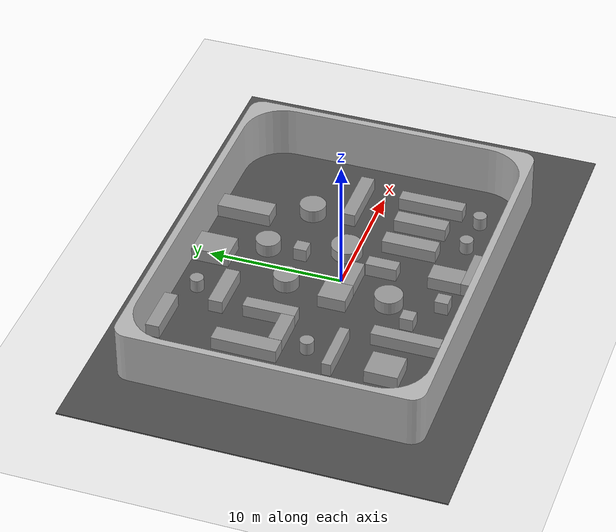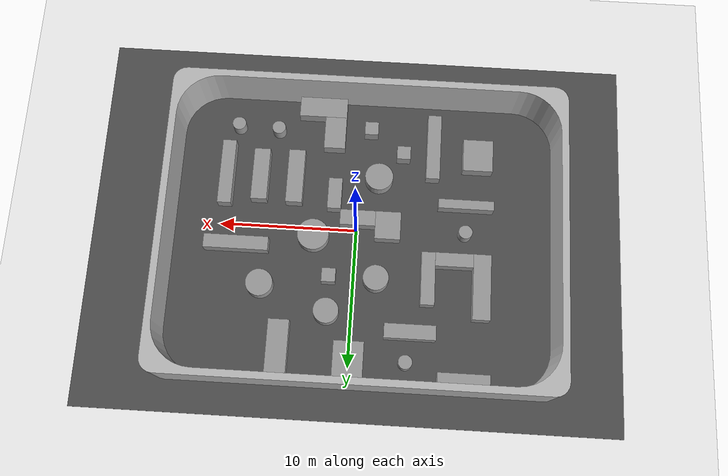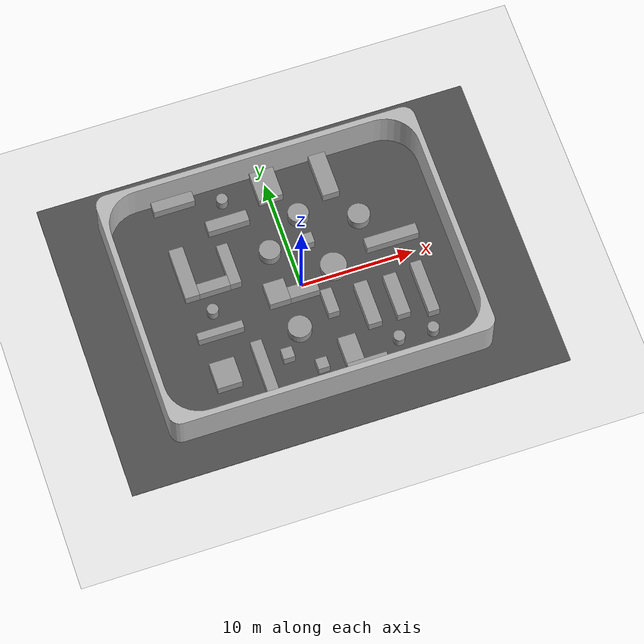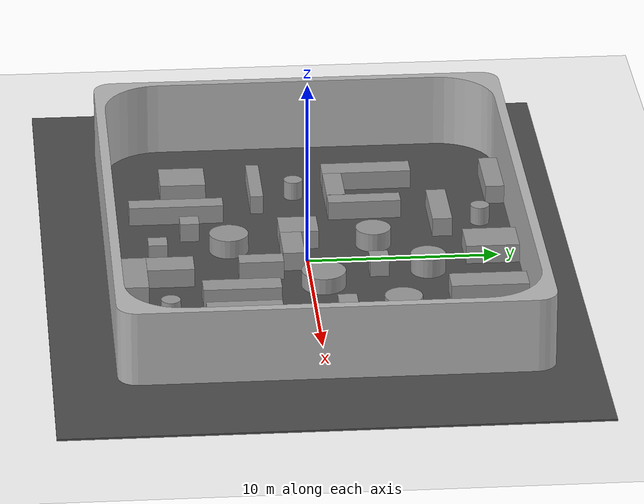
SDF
<sdf version="1.6">
 <world name="default">
  <light name="sun" type="directional">
   <pose>0 0 100 0 -0 0</pose>
   <diffuse>0.8 0.8 0.8 1</diffuse>
   <specular>0.1 0.1 0.1 1</specular>
   <attenuation>
    <range>1000</range>
    <constant>0.9</constant>
    <linear>0.01</linear>
    <quadratic>0.001</quadratic>
   </attenuation>
   <direction>-0.5 0.5 -1</direction>
  </light>
  <model name="ground_plane">
   <static>1</static>
   <link name="link">
    <collision name="collision">
     <geometry><plane><normal>0 0 1</normal><size>100 100</size></plane></geometry>
     <surface><friction><ode><mu>100</mu><mu2>50</mu2></ode></friction></surface>
    </collision>
    <visual name="visual">
     <cast_shadows>0</cast_shadows>
     <geometry><plane><normal>0 0 1</normal><size>100 100</size></plane></geometry>
     <material>
      <script><uri>file://media/materials/scripts/gazebo.material</uri><name>Gazebo/Grey</name></script>
     </material>
    </visual>
   </link>
  </model>
  <gravity>0 0 -9.8</gravity>
  <magnetic_field>6e-06 2.3e-05 -4.2e-05</magnetic_field>
  <atmosphere type="adiabatic"/>
  <physics name="default_physics" default="0" type="ode">
   <max_step_size>0.001</max_step_size>
   <real_time_factor>1</real_time_factor>
   <real_time_update_rate>1000</real_time_update_rate>
  </physics>
  <scene><ambient>0.4 0.4 0.4 1</ambient><background>0.7 0.7 0.7 1</background><shadows>1</shadows></scene>
  <spherical_coordinates>
   <surface_model>EARTH_WGS84</surface_model>
   <latitude_deg>0</latitude_deg>
   <longitude_deg>0</longitude_deg>
   <elevation>0</elevation>
   <heading_deg>0</heading_deg>
  </spherical_coordinates>
  <model name="asphalt_plane">
   <static>1</static>
   <link name="link">
    <collision name="collision"><geometry><box><size>38.6352 27.5497 0.1</size></box></geometry></collision>
    <visual name="visual">
     <cast_shadows>0</cast_shadows>
     <geometry><box><size>38.6352 27.5497 0.1</size></box></geometry>
     <material>
      <script>
       <uri>model://asphalt_plane/materials/scripts</uri>
       <uri>model://asphalt_plane/materials/textures</uri>
       <name>vrc/asphalt</name>
      </script>
     </material>
    </visual>
   </link>
   <pose>-0.04089 0.004904 0 0 -0 0</pose>
  </model>
  <model name="yard">
   <pose>-0.5 0.5 0 1.5708 -0 1.5708</pose>
   <static>1</static>
   <link name="body">
    <collision name="collision">
     <geometry><mesh><uri>model://yard/yard.stl</uri><scale>0.1 0.1 0.1</scale></mesh></geometry>
    </collision>
    <visual name="visual">
     <geometry><mesh><uri>model://yard/yard.stl</uri><scale>0.1 0.1 0.1</scale></mesh></geometry>
    </visual>
   </link>
  </model>
  <audio><device>default</device></audio>
  <model name="unit_box">
   <pose>1.94484 -7.27317 0.549944 4.6e-05 -0 -0.000235</pose>
   <static>1</static>
   <link name="link">
    <inertial>
     <mass>1</mass>
     <inertia>
      <ixx>0.166667</ixx>
      <ixy>0</ixy>
      <ixz>0</ixz>
      <iyy>0.166667</iyy>
      <iyz>0</iyz>
      <izz>0.166667</izz>
     </inertia>
    </inertial>
    <collision name="collision"><geometry><box><size>1.56644 2.44989 1</size></box></geometry></collision>
    <visual name="visual">
     <geometry><box><size>1.56644 2.44989 1</size></box></geometry>
     <material>
      <script><name>Gazebo/Grey</name><uri>file://media/materials/scripts/gazebo.material</uri></script>
     </material>
    </visual>
   </link>
  </model>
  <model name="unit_box_0">
   <pose>-0.101478 -0.784256 0.549995 -8e-06 -0 4.5e-05</pose>
   <static>1</static>
   <link name="link">
    <inertial>
     <mass>1</mass>
     <inertia>
      <ixx>0.166667</ixx>
      <ixy>0</ixy>
      <ixz>0</ixz>
      <iyy>0.166667</iyy>
      <iyz>0</iyz>
      <izz>0.166667</izz>
     </inertia>
    </inertial>
    <collision name="collision"><geometry><box><size>2.57215 1.13119 1</size></box></geometry></collision>
    <visual name="visual">
     <geometry><box><size>2.57215 1.13119 1</size></box></geometry>
     <material>
      <script><name>Gazebo/Grey</name><uri>file://media/materials/scripts/gazebo.material</uri></script>
     </material>
    </visual>
   </link>
  </model>
  <model name="unit_box_2">
   <pose>-4.24399 7.31351 0.549996 -7e-06 -0 0.001667</pose>
   <static>1</static>
   <link name="link">
    <inertial>
     <mass>1</mass>
     <inertia>
      <ixx>0.166667</ixx>
      <ixy>0</ixy>
      <ixz>0</ixz>
      <iyy>0.166667</iyy>
      <iyz>0</iyz>
      <izz>0.166667</izz>
     </inertia>
    </inertial>
    <collision name="collision"><geometry><box><size>3.6762 1.04493 1</size></box></geometry></collision>
    <visual name="visual">
     <geometry><box><size>3.6762 1.04493 1</size></box></geometry>
     <material>
      <script><name>Gazebo/Grey</name><uri>file://media/materials/scripts/gazebo.material</uri></script>
     </material>
    </visual>
   </link>
  </model>
  <model name="unit_box_3">
   <pose>-7.95065 -2.22885 0.549228 0 0.000383 -0.000473</pose>
   <static>1</static>
   <link name="link">
    <inertial>
     <mass>1</mass>
     <inertia>
      <ixx>0.166667</ixx>
      <ixy>0</ixy>
      <ixz>0</ixz>
      <iyy>0.166667</iyy>
      <iyz>0</iyz>
      <izz>0.166667</izz>
     </inertia>
    </inertial>
    <collision name="collision"><geometry><box><size>4.02808 0.69011 1</size></box></geometry></collision>
    <visual name="visual">
     <geometry><box><size>4.02808 0.69011 1</size></box></geometry>
     <material>
      <script><name>Gazebo/Grey</name><uri>file://media/materials/scripts/gazebo.material</uri></script>
     </material>
    </visual>
   </link>
  </model>
  <model name="unit_box_4">
   <pose>-5.36419 3.41619 0.544487 0 -0 0.009696</pose>
   <static>1</static>
   <link name="link">
    <inertial>
     <mass>1</mass>
     <inertia>
      <ixx>0.166667</ixx>
      <ixy>0</ixy>
      <ixz>0</ixz>
      <iyy>0.166667</iyy>
      <iyz>0</iyz>
      <izz>0.166667</izz>
     </inertia>
    </inertial>
    <collision name="collision"><geometry><box><size>1 3.85958 1</size></box></geometry></collision>
    <visual name="visual">
     <geometry><box><size>1 3.85958 1</size></box></geometry>
     <material>
      <script><name>Gazebo/Grey</name><uri>file://media/materials/scripts/gazebo.material</uri></script>
     </material>
    </visual>
   </link>
  </model>
  <model name="unit_box_5">
   <pose>-2.31387 -0.32271 0.549982 0 1.7e-05 -1.57091</pose>
   <static>1</static>
   <link name="link">
    <inertial>
     <mass>1</mass>
     <inertia>
      <ixx>0.166667</ixx>
      <ixy>0</ixy>
      <ixz>0</ixz>
      <iyy>0.166667</iyy>
      <iyz>0</iyz>
      <izz>0.166667</izz>
     </inertia>
    </inertial>
    <collision name="collision"><geometry><box><size>2.05698 1.8521 1</size></box></geometry></collision>
    <visual name="visual">
     <geometry><box><size>2.05698 1.8521 1</size></box></geometry>
     <material>
      <script><name>Gazebo/Grey</name><uri>file://media/materials/scripts/gazebo.material</uri></script>
     </material>
    </visual>
   </link>
  </model>
  <model name="unit_box_7">
   <pose>-9.21828 3.84095 0.550078 0.003668 -0 0</pose>
   <static>1</static>
   <link name="link">
    <inertial>
     <mass>1</mass>
     <inertia>
      <ixx>0.166667</ixx>
      <ixy>0</ixy>
      <ixz>0</ixz>
      <iyy>0.166667</iyy>
      <iyz>0</iyz>
      <izz>0.166667</izz>
     </inertia>
    </inertial>
    <collision name="collision"><geometry><box><size>1.27143 4.75463 1</size></box></geometry></collision>
    <visual name="visual">
     <geometry><box><size>1.27143 4.75463 1</size></box></geometry>
     <material>
      <script><name>Gazebo/Grey</name><uri>file://media/materials/scripts/gazebo.material</uri></script>
     </material>
    </visual>
   </link>
  </model>
  <model name="unit_cylinder">
   <pose>-1.64131 3.58834 0.549998 -3e-06 -1e-06 0.152909</pose>
   <static>1</static>
   <link name="link">
    <inertial>
     <mass>1</mass>
     <inertia><ixx>0.145833</ixx><ixy>0</ixy><ixz>0</ixz><iyy>0.145833</iyy><iyz>0</iyz><izz>0.125</izz></inertia>
    </inertial>
    <collision name="collision">
     <geometry><cylinder><radius>0.928444</radius><length>1</length></cylinder></geometry>
    </collision>
    <visual name="visual">
     <geometry><cylinder><radius>0.928444</radius><length>1</length></cylinder></geometry>
     <material>
      <script><name>Gazebo/Grey</name><uri>file://media/materials/scripts/gazebo.material</uri></script>
     </material>
    </visual>
   </link>
  </model>
  <model name="unit_cylinder_0">
   <pose>-1.49651 -4.01365 0.549992 2e-06 0 -0.0002</pose>
   <static>1</static>
   <link name="link">
    <inertial>
     <mass>1</mass>
     <inertia><ixx>0.145833</ixx><ixy>0</ixy><ixz>0</ixz><iyy>0.145833</iyy><iyz>0</iyz><izz>0.125</izz></inertia>
    </inertial>
    <collision name="collision">
     <geometry><cylinder><radius>1.02868</radius><length>1</length></cylinder></geometry>
    </collision>
    <visual name="visual">
     <geometry><cylinder><radius>1.02868</radius><length>1</length></cylinder></geometry>
     <material>
      <script><name>Gazebo/Grey</name><uri>file://media/materials/scripts/gazebo.material</uri></script>
     </material>
    </visual>
   </link>
  </model>
  <model name="unit_box_9">
   <pose>-7.21454 1.97147 0.549892 0 -7.9e-05 0.003843</pose>
   <static>1</static>
   <link name="link">
    <inertial>
     <mass>1</mass>
     <inertia>
      <ixx>0.166667</ixx>
      <ixy>0</ixy>
      <ixz>0</ixz>
      <iyy>0.166667</iyy>
      <iyz>0</iyz>
      <izz>0.166667</izz>
     </inertia>
    </inertial>
    <collision name="collision"><geometry><box><size>2.74403 1 1</size></box></geometry></collision>
    <visual name="visual">
     <geometry><box><size>2.74403 1 1</size></box></geometry>
     <material>
      <script><name>Gazebo/Grey</name><uri>file://media/materials/scripts/gazebo.material</uri></script>
     </material>
    </visual>
   </link>
  </model>
  <model name="unit_box_10">
   <pose>-5.43624 -6.57677 0.547912 -0.000838 0 0</pose>
   <static>1</static>
   <link name="link">
    <inertial>
     <mass>1</mass>
     <inertia>
      <ixx>0.166667</ixx>
      <ixy>0</ixy>
      <ixz>0</ixz>
      <iyy>0.166667</iyy>
      <iyz>0</iyz>
      <izz>0.166667</izz>
     </inertia>
    </inertial>
    <collision name="collision"><geometry><box><size>1 4.98238 1</size></box></geometry></collision>
    <visual name="visual">
     <geometry><box><size>1 4.98238 1</size></box></geometry>
     <material>
      <script><name>Gazebo/Grey</name><uri>file://media/materials/scripts/gazebo.material</uri></script>
     </material>
    </visual>
   </link>
  </model>
  <model name="unit_cylinder_1">
   <pose>3.06942 0.609835 -1.34282 1e-06 -1e-06 0.000638</pose>
   <static>1</static>
   <link name="link">
    <inertial>
     <mass>1</mass>
     <inertia><ixx>0.145833</ixx><ixy>0</ixy><ixz>0</ixz><iyy>0.145833</iyy><iyz>0</iyz><izz>0.125</izz></inertia>
    </inertial>
    <collision name="collision">
     <geometry><cylinder><radius>1.15102</radius><length>4.52633</length></cylinder></geometry>
    </collision>
    <visual name="visual">
     <geometry><cylinder><radius>1.15102</radius><length>4.52633</length></cylinder></geometry>
     <material>
      <script><name>Gazebo/Grey</name><uri>file://media/materials/scripts/gazebo.material</uri></script>
     </material>
    </visual>
   </link>
  </model>
  <model name="unit_cylinder_2">
   <pose>1.76132 6.15444 0.550001 -1e-06 1e-06 0.667564</pose>
   <static>1</static>
   <link name="link">
    <inertial>
     <mass>1</mass>
     <inertia><ixx>0.145833</ixx><ixy>0</ixy><ixz>0</ixz><iyy>0.145833</iyy><iyz>0</iyz><izz>0.125</izz></inertia>
    </inertial>
    <collision name="collision">
     <geometry><cylinder><radius>0.91444</radius><length>1</length></cylinder></geometry>
    </collision>
    <visual name="visual">
     <geometry><cylinder><radius>0.91444</radius><length>1</length></cylinder></geometry>
     <material>
      <script><name>Gazebo/Grey</name><uri>file://media/materials/scripts/gazebo.material</uri></script>
     </material>
    </visual>
   </link>
  </model>
  <model name="unit_box_1">
   <pose>2.925 -9.25818 0.549996 6e-06 -0 0.000254</pose>
   <static>1</static>
   <link name="link">
    <inertial>
     <mass>1</mass>
     <inertia>
      <ixx>0.166667</ixx>
      <ixy>0</ixy>
      <ixz>0</ixz>
      <iyy>0.166667</iyy>
      <iyz>0</iyz>
      <izz>0.166667</izz>
     </inertia>
    </inertial>
    <collision name="collision"><geometry><box><size>3.52782 1.51824 1</size></box></geometry></collision>
    <visual name="visual">
     <geometry><box><size>3.52782 1.51824 1</size></box></geometry>
     <material>
      <script><name>Gazebo/Grey</name><uri>file://media/materials/scripts/gazebo.material</uri></script>
     </material>
    </visual>
   </link>
  </model>
  <model name="unit_box_6">
   <pose>5.01396 8.97832 0.549236 -0.00038 0 7.5e-05</pose>
   <static>1</static>
   <link name="link">
    <inertial>
     <mass>1</mass>
     <inertia>
      <ixx>0.166667</ixx>
      <ixy>0</ixy>
      <ixz>0</ixz>
      <iyy>0.166667</iyy>
      <iyz>0</iyz>
      <izz>0.166667</izz>
     </inertia>
    </inertial>
    <collision name="collision"><geometry><box><size>1.49837 4.01946 1</size></box></geometry></collision>
    <visual name="visual">
     <geometry><box><size>1.49837 4.01946 1</size></box></geometry>
     <material>
      <script><name>Gazebo/Grey</name><uri>file://media/materials/scripts/gazebo.material</uri></script>
     </material>
    </visual>
   </link>
  </model>
  <model name="unit_box_8">
   <pose>4.65698 -3.72347 0.549212 0.00039 -0 0</pose>
   <static>1</static>
   <link name="link">
    <inertial>
     <mass>1</mass>
     <inertia>
      <ixx>0.166667</ixx>
      <ixy>0</ixy>
      <ixz>0</ixz>
      <iyy>0.166667</iyy>
      <iyz>0</iyz>
      <izz>0.166667</izz>
     </inertia>
    </inertial>
    <collision name="collision"><geometry><box><size>1.20721 4.04477 1</size></box></geometry></collision>
    <visual name="visual">
     <geometry><box><size>1.20721 4.04477 1</size></box></geometry>
     <material>
      <script><name>Gazebo/Grey</name><uri>file://media/materials/scripts/gazebo.material</uri></script>
     </material>
    </visual>
   </link>
  </model>
  <model name="unit_box_11">
   <pose>7.23617 -3.74513 0.549337 0.00034 -0 0</pose>
   <static>1</static>
   <link name="link">
    <inertial>
     <mass>1</mass>
     <inertia>
      <ixx>0.166667</ixx>
      <ixy>0</ixy>
      <ixz>0</ixz>
      <iyy>0.166667</iyy>
      <iyz>0</iyz>
      <izz>0.166667</izz>
     </inertia>
    </inertial>
    <collision name="collision"><geometry><box><size>1.17874 3.90203 1</size></box></geometry></collision>
    <visual name="visual">
     <geometry><box><size>1.17874 3.90203 1</size></box></geometry>
     <material>
      <script><name>Gazebo/Grey</name><uri>file://media/materials/scripts/gazebo.material</uri></script>
     </material>
    </visual>
   </link>
  </model>
  <model name="unit_box_12">
   <pose>9.73406 -3.80097 0.54814 -0.000766 0 0</pose>
   <static>1</static>
   <link name="link">
    <inertial>
     <mass>1</mass>
     <inertia>
      <ixx>0.166667</ixx>
      <ixy>0</ixy>
      <ixz>0</ixz>
      <iyy>0.166667</iyy>
      <iyz>0</iyz>
      <izz>0.166667</izz>
     </inertia>
    </inertial>
    <collision name="collision"><geometry><box><size>1 4.85814 1</size></box></geometry></collision>
    <visual name="visual">
     <geometry><box><size>1 4.85814 1</size></box></geometry>
     <material>
      <script><name>Gazebo/Grey</name><uri>file://media/materials/scripts/gazebo.material</uri></script>
     </material>
    </visual>
   </link>
  </model>
  <model name="unit_box_13">
   <pose>8.58288 1.54858 0.549997 6e-06 -0 0.000172</pose>
   <static>1</static>
   <link name="link">
    <inertial>
     <mass>1</mass>
     <inertia>
      <ixx>0.166667</ixx>
      <ixy>0</ixy>
      <ixz>0</ixz>
      <iyy>0.166667</iyy>
      <iyz>0</iyz>
      <izz>0.166667</izz>
     </inertia>
    </inertial>
    <collision name="collision"><geometry><box><size>4.68093 1 1</size></box></geometry></collision>
    <visual name="visual">
     <geometry><box><size>4.68093 1 1</size></box></geometry>
     <material>
      <script><name>Gazebo/Grey</name><uri>file://media/materials/scripts/gazebo.material</uri></script>
     </material>
    </visual>
   </link>
  </model>
  <model name="unit_cylinder_3">
   <pose>6.6475 4.41663 0.55 0 0 -0.000136</pose>
   <static>1</static>
   <link name="link">
    <inertial>
     <mass>1</mass>
     <inertia><ixx>0.145833</ixx><ixy>0</ixy><ixz>0</ixz><iyy>0.145833</iyy><iyz>0</iyz><izz>0.125</izz></inertia>
    </inertial>
    <collision name="collision">
     <geometry><cylinder><radius>0.977315</radius><length>1</length></cylinder></geometry>
    </collision>
    <visual name="visual">
     <geometry><cylinder><radius>0.977315</radius><length>1</length></cylinder></geometry>
     <material>
      <script><name>Gazebo/Grey</name><uri>file://media/materials/scripts/gazebo.material</uri></script>
     </material>
    </visual>
   </link>
  </model>
  <model name="unit_cylinder_4">
   <pose>-7.95129 -0.149554 0.550002 4e-06 1e-06 0.00014</pose>
   <static>1</static>
   <link name="link">
    <inertial>
     <mass>1</mass>
     <inertia><ixx>0.145833</ixx><ixy>0</ixy><ixz>0</ixz><iyy>0.145833</iyy><iyz>0</iyz><izz>0.125</izz></inertia>
    </inertial>
    <collision name="collision">
     <geometry><cylinder><radius>0.5</radius><length>1</length></cylinder></geometry>
    </collision>
    <visual name="visual">
     <geometry><cylinder><radius>0.5</radius><length>1</length></cylinder></geometry>
     <material>
      <script><name>Gazebo/Grey</name><uri>file://media/materials/scripts/gazebo.material</uri></script>
     </material>
    </visual>
   </link>
  </model>
  <model name="unit_box_2_clone">
   <pose>-8.09581 10.5412 0.549995 -7e-06 -0 0.001667</pose>
   <static>1</static>
   <link name="link">
    <inertial>
     <mass>1</mass>
     <inertia>
      <ixx>0.166667</ixx>
      <ixy>0</ixy>
      <ixz>0</ixz>
      <iyy>0.166667</iyy>
      <iyz>0</iyz>
      <izz>0.166667</izz>
     </inertia>
    </inertial>
    <collision name="collision"><geometry><box><size>3.6762 1.04493 1</size></box></geometry></collision>
    <visual name="visual">
     <geometry><box><size>3.6762 1.04493 1</size></box></geometry>
     <material>
      <script><name>Gazebo/Grey</name><uri>file://media/materials/scripts/gazebo.material</uri></script>
     </material>
    </visual>
   </link>
  </model>
  <model name="unit_box_14">
   <pose>-3.23125 -5.98629 0.55 -0 -0 -0</pose>
   <static>1</static>
   <link name="link">
    <inertial>
     <mass>1</mass>
     <inertia>
      <ixx>0.166667</ixx>
      <ixy>0</ixy>
      <ixz>0</ixz>
      <iyy>0.166667</iyy>
      <iyz>0</iyz>
      <izz>0.166667</izz>
     </inertia>
    </inertial>
    <collision name="collision"><geometry><box><size>1 1 1</size></box></geometry></collision>
    <visual name="visual">
     <geometry><box><size>1 1 1</size></box></geometry>
     <material>
      <script><name>Gazebo/Grey</name><uri>file://media/materials/scripts/gazebo.material</uri></script>
     </material>
    </visual>
   </link>
  </model>
  <model name="unit_box_15">
   <pose>-0.754558 -7.78163 0.55 -0 -0 -0</pose>
   <static>1</static>
   <link name="link">
    <inertial>
     <mass>1</mass>
     <inertia>
      <ixx>0.166667</ixx>
      <ixy>0</ixy>
      <ixz>0</ixz>
      <iyy>0.166667</iyy>
      <iyz>0</iyz>
      <izz>0.166667</izz>
     </inertia>
    </inertial>
    <collision name="collision"><geometry><box><size>1 1 1</size></box></geometry></collision>
    <visual name="visual">
     <geometry><box><size>1 1 1</size></box></geometry>
     <material>
      <script><name>Gazebo/Grey</name><uri>file://media/materials/scripts/gazebo.material</uri></script>
     </material>
    </visual>
   </link>
  </model>
  <model name="unit_box_16">
   <pose>1.67922 -2.54789 0.549961 3.4e-05 -0 0</pose>
   <static>1</static>
   <link name="link">
    <inertial>
     <mass>1</mass>
     <inertia>
      <ixx>0.166667</ixx>
      <ixy>0</ixy>
      <ixz>0</ixz>
      <iyy>0.166667</iyy>
      <iyz>0</iyz>
      <izz>0.166667</izz>
     </inertia>
    </inertial>
    <collision name="collision"><geometry><box><size>1 2.31479 1</size></box></geometry></collision>
    <visual name="visual">
     <geometry><box><size>1 2.31479 1</size></box></geometry>
     <material>
      <script><name>Gazebo/Grey</name><uri>file://media/materials/scripts/gazebo.material</uri></script>
     </material>
    </visual>
   </link>
  </model>
  <model name="unit_cylinder_5">
   <pose>6.17846 -7.45941 0.550001 2e-06 0 -4e-05</pose>
   <static>1</static>
   <link name="link">
    <inertial>
     <mass>1</mass>
     <inertia><ixx>0.145833</ixx><ixy>0</ixy><ixz>0</ixz><iyy>0.145833</iyy><iyz>0</iyz><izz>0.125</izz></inertia>
    </inertial>
    <collision name="collision">
     <geometry><cylinder><radius>0.5</radius><length>1</length></cylinder></geometry>
    </collision>
    <visual name="visual">
     <geometry><cylinder><radius>0.5</radius><length>1</length></cylinder></geometry>
     <material>
      <script><name>Gazebo/Grey</name><uri>file://media/materials/scripts/gazebo.material</uri></script>
     </material>
    </visual>
   </link>
  </model>
  <model name="unit_cylinder_6">
   <pose>9.17026 -7.60641 0.549988 4e-06 2e-06 -0.000215</pose>
   <static>1</static>
   <link name="link">
    <inertial>
     <mass>1</mass>
     <inertia><ixx>0.145833</ixx><ixy>0</ixy><ixz>0</ixz><iyy>0.145833</iyy><iyz>0</iyz><izz>0.125</izz></inertia>
    </inertial>
    <collision name="collision">
     <geometry><cylinder><radius>0.5</radius><length>1</length></cylinder></geometry>
    </collision>
    <visual name="visual">
     <geometry><cylinder><radius>0.5</radius><length>1</length></cylinder></geometry>
     <material>
      <script><name>Gazebo/Grey</name><uri>file://media/materials/scripts/gazebo.material</uri></script>
     </material>
    </visual>
   </link>
  </model>
  <model name="unit_box_17">
   <pose>-8.7205 -6.07409 0.549948 4.3e-05 0 -1e-06</pose>
   <static>1</static>
   <link name="link">
    <inertial>
     <mass>1</mass>
     <inertia>
      <ixx>0.166667</ixx>
      <ixy>0</ixy>
      <ixz>0</ixz>
      <iyy>0.166667</iyy>
      <iyz>0</iyz>
      <izz>0.166667</izz>
     </inertia>
    </inertial>
    <collision name="collision"><geometry><box><size>2.18838 2.41841 1</size></box></geometry></collision>
    <visual name="visual">
     <geometry><box><size>2.18838 2.41841 1</size></box></geometry>
     <material>
      <script><name>Gazebo/Grey</name><uri>file://media/materials/scripts/gazebo.material</uri></script>
     </material>
    </visual>
   </link>
  </model>
  <model name="unit_box_18">
   <pose>-0.000498 9.6121 0.54988 -8.6e-05 -0 -0.000127</pose>
   <static>1</static>
   <link name="link">
    <inertial>
     <mass>1</mass>
     <inertia>
      <ixx>0.166667</ixx>
      <ixy>0</ixy>
      <ixz>0</ixz>
      <iyy>0.166667</iyy>
      <iyz>0</iyz>
      <izz>0.166667</izz>
     </inertia>
    </inertial>
    <collision name="collision"><geometry><box><size>2.15095 2.7961 1</size></box></geometry></collision>
    <visual name="visual">
     <geometry><box><size>2.15095 2.7961 1</size></box></geometry>
     <material>
      <script><name>Gazebo/Grey</name><uri>file://media/materials/scripts/gazebo.material</uri></script>
     </material>
    </visual>
   </link>
  </model>
  <model name="unit_cylinder_7">
   <pose>-4.00444 9.46669 0.54999 0 -0 -1.9e-05</pose>
   <static>1</static>
   <link name="link">
    <inertial>
     <mass>1</mass>
     <inertia><ixx>0.145833</ixx><ixy>0</ixy><ixz>0</ixz><iyy>0.145833</iyy><iyz>0</iyz><izz>0.125</izz></inertia>
    </inertial>
    <collision name="collision">
     <geometry><cylinder><radius>0.5</radius><length>1</length></cylinder></geometry>
    </collision>
    <visual name="visual">
     <geometry><cylinder><radius>0.5</radius><length>1</length></cylinder></geometry>
     <material>
      <script><name>Gazebo/Grey</name><uri>file://media/materials/scripts/gazebo.material</uri></script>
     </material>
    </visual>
   </link>
  </model>
  <model name="unit_box_19">
   <pose>1.74012 3.58464 0.55 -0 -0 -0</pose>
   <static>1</static>
   <link name="link">
    <inertial>
     <mass>1</mass>
     <inertia>
      <ixx>0.166667</ixx>
      <ixy>0</ixy>
      <ixz>0</ixz>
      <iyy>0.166667</iyy>
      <iyz>0</iyz>
      <izz>0.166667</izz>
     </inertia>
    </inertial>
    <collision name="collision"><geometry><box><size>1 1 1</size></box></geometry></collision>
    <visual name="visual">
     <geometry><box><size>1 1 1</size></box></geometry>
     <material>
      <script><name>Gazebo/Grey</name><uri>file://media/materials/scripts/gazebo.material</uri></script>
     </material>
    </visual>
   </link>
  </model>
 </world>
</sdf>
